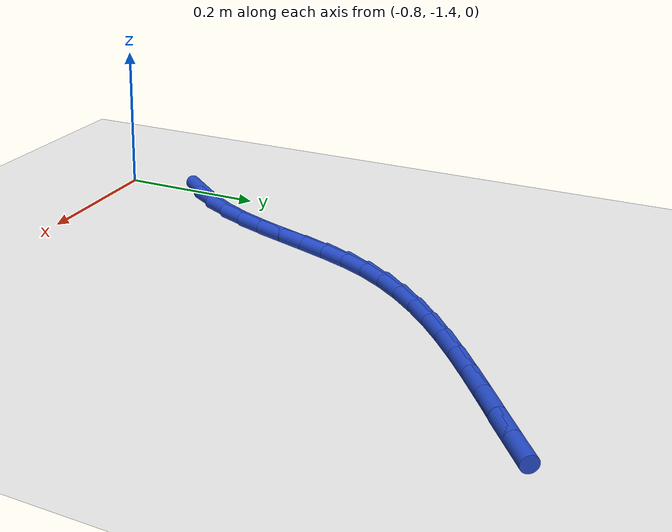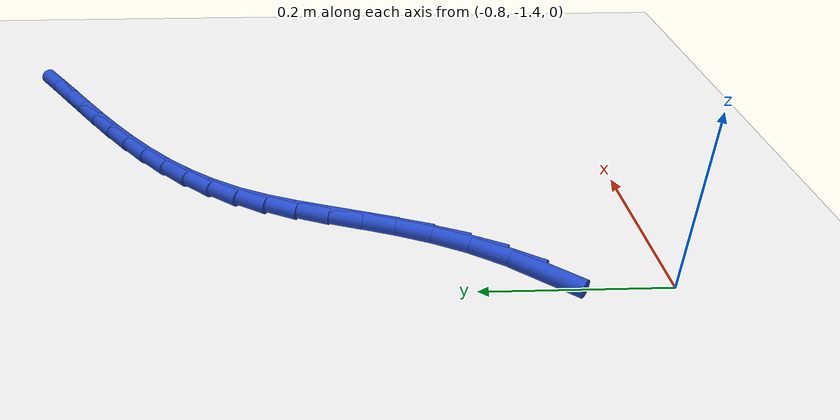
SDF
<sdf version="1.6">
 <world name="default">
  <model name="ground_plane">
   <static>1</static>
   <link name="link">
    <collision name="collision">
     <geometry><plane><normal>0 0 1</normal><size>100 100</size></plane></geometry>
     <surface><friction><ode><mu>100</mu><mu2>50</mu2></ode></friction></surface>
    </collision>
    <visual name="visual">
     <cast_shadows>0</cast_shadows>
     <geometry><plane><normal>0 0 1</normal><size>100 100</size></plane></geometry>
     <material>
      <script><uri>file://media/materials/scripts/gazebo.material</uri><name>Gazebo/WhiteGlow</name></script>
     </material>
    </visual>
   </link>
  </model>
  <model name="line">
   <link name="link_190">
    <pose>-0.7855679364538802 -1.2731487900218725 0.01 0 1.57 0.8728890069114424</pose>
    <collision name="collision">
     <geometry><cylinder><radius>0.01</radius><length>0.08</length></cylinder></geometry>
    </collision>
    <visual name="visual">
     <material>
      <script><name>Gazebo/Blue</name><uri>file://media/materials/scripts/gazebo.material</uri></script>
     </material>
     <geometry><cylinder><radius>0.01</radius><length>0.08</length></cylinder></geometry>
    </visual>
   </link>
   <link name="link_191">
    <pose>-0.7570475197259966 -1.239143988372835 0.01 0 1.57 0.9931675116524007</pose>
    <collision name="collision">
     <geometry><cylinder><radius>0.01</radius><length>0.08</length></cylinder></geometry>
    </collision>
    <visual name="visual">
     <material>
      <script><name>Gazebo/Blue</name><uri>file://media/materials/scripts/gazebo.material</uri></script>
     </material>
     <geometry><cylinder><radius>0.01</radius><length>0.08</length></cylinder></geometry>
    </visual>
   </link>
   <link name="link_192">
    <pose>-0.7340156138714661 -1.2038073103453542 0.01 0 1.57 1.0978716975589928</pose>
    <collision name="collision">
     <geometry><cylinder><radius>0.01</radius><length>0.08</length></cylinder></geometry>
    </collision>
    <visual name="visual">
     <material>
      <script><name>Gazebo/Blue</name><uri>file://media/materials/scripts/gazebo.material</uri></script>
     </material>
     <geometry><cylinder><radius>0.01</radius><length>0.08</length></cylinder></geometry>
    </visual>
   </link>
   <link name="link_193">
    <pose>-0.7155146482826271 -1.1676479395992732 0.01 0 1.57 1.1783431812019662</pose>
    <collision name="collision">
     <geometry><cylinder><radius>0.01</radius><length>0.08</length></cylinder></geometry>
    </collision>
    <visual name="visual">
     <material>
      <script><name>Gazebo/Blue</name><uri>file://media/materials/scripts/gazebo.material</uri></script>
     </material>
     <geometry><cylinder><radius>0.01</radius><length>0.08</length></cylinder></geometry>
    </visual>
   </link>
   <link name="link_194">
    <pose>-0.7003769464500108 -1.1310768578263084 0.01 0 1.57 1.2306671333252475</pose>
    <collision name="collision">
     <geometry><cylinder><radius>0.01</radius><length>0.08</length></cylinder></geometry>
    </collision>
    <visual name="visual">
     <material>
      <script><name>Gazebo/Blue</name><uri>file://media/materials/scripts/gazebo.material</uri></script>
     </material>
     <geometry><cylinder><radius>0.01</radius><length>0.08</length></cylinder></geometry>
    </visual>
   </link>
   <link name="link_195">
    <pose>-0.6874348318641478 -1.0945050467181765 0.01 0 1.57 1.2525254186758872</pose>
    <collision name="collision">
     <geometry><cylinder><radius>0.01</radius><length>0.08</length></cylinder></geometry>
    </collision>
    <visual name="visual">
     <material>
      <script><name>Gazebo/Blue</name><uri>file://media/materials/scripts/gazebo.material</uri></script>
     </material>
     <geometry><cylinder><radius>0.01</radius><length>0.08</length></cylinder></geometry>
    </visual>
   </link>
   <link name="link_196">
    <pose>-0.6755206280155694 -1.0583434879665952 0.01 0 1.57 1.242087726312142</pose>
    <collision name="collision">
     <geometry><cylinder><radius>0.01</radius><length>0.08</length></cylinder></geometry>
    </collision>
    <visual name="visual">
     <material>
      <script><name>Gazebo/Blue</name><uri>file://media/materials/scripts/gazebo.material</uri></script>
     </material>
     <geometry><cylinder><radius>0.01</radius><length>0.08</length></cylinder></geometry>
    </visual>
   </link>
   <link name="link_197">
    <pose>-0.6634666583948069 -1.02300316326328 0.01 0 1.57 1.1974333664015802</pose>
    <collision name="collision">
     <geometry><cylinder><radius>0.01</radius><length>0.08</length></cylinder></geometry>
    </collision>
    <visual name="visual">
     <material>
      <script><name>Gazebo/Blue</name><uri>file://media/materials/scripts/gazebo.material</uri></script>
     </material>
     <geometry><cylinder><radius>0.01</radius><length>0.08</length></cylinder></geometry>
    </visual>
   </link>
   <link name="link_198">
    <pose>-0.6501052464923915 -0.9888950542999504 0.01 0 1.57 1.1169853107373306</pose>
    <collision name="collision">
     <geometry><cylinder><radius>0.01</radius><length>0.08</length></cylinder></geometry>
    </collision>
    <visual name="visual">
     <material>
      <script><name>Gazebo/Blue</name><uri>file://media/materials/scripts/gazebo.material</uri></script>
     </material>
     <geometry><cylinder><radius>0.01</radius><length>0.08</length></cylinder></geometry>
    </visual>
   </link>
   <link name="link_199">
    <pose>-0.6342698079927854 -0.9564296877218549 0.01 0 1.57 1.0129205097357663</pose>
    <collision name="collision">
     <geometry><cylinder><radius>0.01</radius><length>0.08</length></cylinder></geometry>
    </collision>
    <visual name="visual">
     <material>
      <script><name>Gazebo/Blue</name><uri>file://media/materials/scripts/gazebo.material</uri></script>
     </material>
     <geometry><cylinder><radius>0.01</radius><length>0.08</length></cylinder></geometry>
    </visual>
   </link>
   <link name="link_200">
    <pose>-0.6151898549190049 -0.9258525624856635 0.01 0 1.57 0.9168965317833712</pose>
    <collision name="collision">
     <geometry><cylinder><radius>0.01</radius><length>0.08</length></cylinder></geometry>
    </collision>
    <visual name="visual">
     <material>
      <script><name>Gazebo/Blue</name><uri>file://media/materials/scripts/gazebo.material</uri></script>
     </material>
     <geometry><cylinder><radius>0.01</radius><length>0.08</length></cylinder></geometry>
    </visual>
   </link>
   <link name="link_201">
    <pose>-0.5930777094253724 -0.8969997042242784 0.01 0 1.57 0.8347049216604706</pose>
    <collision name="collision">
     <geometry><cylinder><radius>0.01</radius><length>0.08</length></cylinder></geometry>
    </collision>
    <visual name="visual">
     <material>
      <script><name>Gazebo/Blue</name><uri>file://media/materials/scripts/gazebo.material</uri></script>
     </material>
     <geometry><cylinder><radius>0.01</radius><length>0.08</length></cylinder></geometry>
    </visual>
   </link>
   <link name="link_202">
    <pose>-0.568295520950299 -0.8696447152458404 0.01 0 1.57 0.7664706422556258</pose>
    <collision name="collision">
     <geometry><cylinder><radius>0.01</radius><length>0.08</length></cylinder></geometry>
    </collision>
    <visual name="visual">
     <material>
      <script><name>Gazebo/Blue</name><uri>file://media/materials/scripts/gazebo.material</uri></script>
     </material>
     <geometry><cylinder><radius>0.01</radius><length>0.08</length></cylinder></geometry>
    </visual>
   </link>
   <link name="link_203">
    <pose>-0.5412054389321944 -0.8435611978584878 0.01 0 1.57 0.7116084500441777</pose>
    <collision name="collision">
     <geometry><cylinder><radius>0.01</radius><length>0.08</length></cylinder></geometry>
    </collision>
    <visual name="visual">
     <material>
      <script><name>Gazebo/Blue</name><uri>file://media/materials/scripts/gazebo.material</uri></script>
     </material>
     <geometry><cylinder><radius>0.01</radius><length>0.08</length></cylinder></geometry>
    </visual>
   </link>
   <link name="link_204">
    <pose>-0.5121696128094689 -0.81852275437036 0.01 0 1.57 0.6692250854467966</pose>
    <collision name="collision">
     <geometry><cylinder><radius>0.01</radius><length>0.08</length></cylinder></geometry>
    </collision>
    <visual name="visual">
     <material>
      <script><name>Gazebo/Blue</name><uri>file://media/materials/scripts/gazebo.material</uri></script>
     </material>
     <geometry><cylinder><radius>0.01</radius><length>0.08</length></cylinder></geometry>
    </visual>
   </link>
   <link name="link_205">
    <pose>-0.4815501920205329 -0.7943029870895966 0.01 0 1.57 0.6383931392111308</pose>
    <collision name="collision">
     <geometry><cylinder><radius>0.01</radius><length>0.08</length></cylinder></geometry>
    </collision>
    <visual name="visual">
     <material>
      <script><name>Gazebo/Blue</name><uri>file://media/materials/scripts/gazebo.material</uri></script>
     </material>
     <geometry><cylinder><radius>0.01</radius><length>0.08</length></cylinder></geometry>
    </visual>
   </link>
   <link name="link_206">
    <pose>-0.44970932600379576 -0.770675498324336 0.01 0 1.57 0.6183099297562019</pose>
    <collision name="collision">
     <geometry><cylinder><radius>0.01</radius><length>0.08</length></cylinder></geometry>
    </collision>
    <visual name="visual">
     <material>
      <script><name>Gazebo/Blue</name><uri>file://media/materials/scripts/gazebo.material</uri></script>
     </material>
     <geometry><cylinder><radius>0.01</radius><length>0.08</length></cylinder></geometry>
    </visual>
   </link>
   <link name="link_207">
    <pose>-0.41700916419766926 -0.7474138903827189 0.01 0 1.57 0.6083771567608539</pose>
    <collision name="collision">
     <geometry><cylinder><radius>0.01</radius><length>0.08</length></cylinder></geometry>
    </collision>
    <visual name="visual">
     <material>
      <script><name>Gazebo/Blue</name><uri>file://media/materials/scripts/gazebo.material</uri></script>
     </material>
     <geometry><cylinder><radius>0.01</radius><length>0.08</length></cylinder></geometry>
    </visual>
   </link>
   <link name="link_208">
    <pose>-0.383811856040563 -0.7242917655728841 0.01 0 1.57 0.6082334809057505</pose>
    <collision name="collision">
     <geometry><cylinder><radius>0.01</radius><length>0.08</length></cylinder></geometry>
    </collision>
    <visual name="visual">
     <material>
      <script><name>Gazebo/Blue</name><uri>file://media/materials/scripts/gazebo.material</uri></script>
     </material>
     <geometry><cylinder><radius>0.01</radius><length>0.08</length></cylinder></geometry>
    </visual>
   </link>
   <link name="link_209">
    <pose>-0.35047955097088734 -0.701082726202971 0.01 0 1.57 0.6177611362422063</pose>
    <collision name="collision">
     <geometry><cylinder><radius>0.01</radius><length>0.08</length></cylinder></geometry>
    </collision>
    <visual name="visual">
     <material>
      <script><name>Gazebo/Blue</name><uri>file://media/materials/scripts/gazebo.material</uri></script>
     </material>
     <geometry><cylinder><radius>0.01</radius><length>0.08</length></cylinder></geometry>
    </visual>
   </link>
  </model>
 </world>
</sdf>
